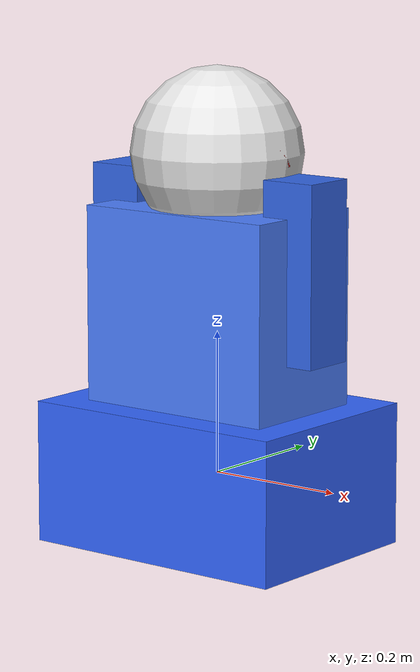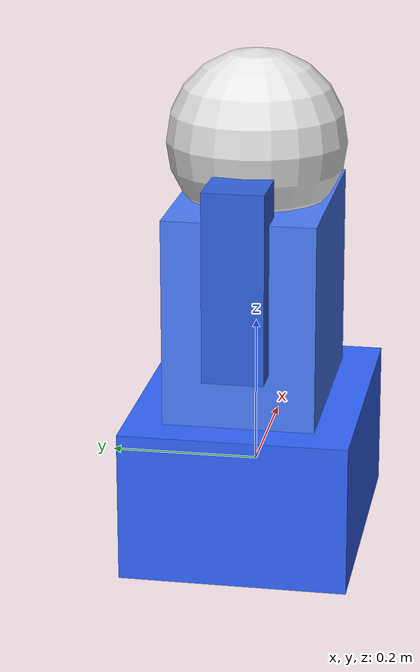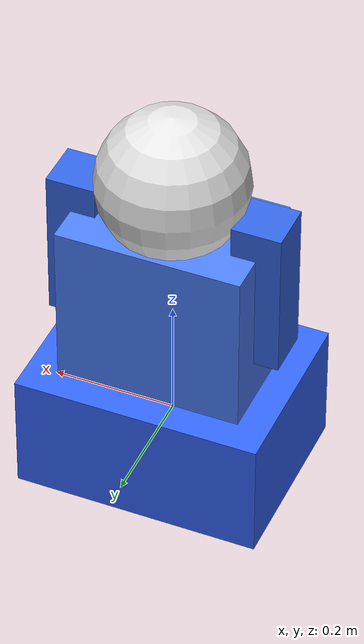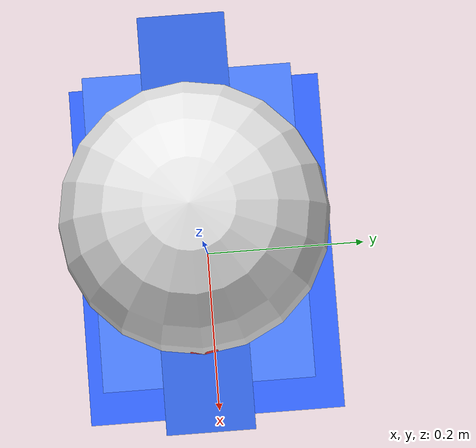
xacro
<?xml version="1.0"?>
<robot name="humanoid_robot" xmlns:xacro="http://ros.org/wiki/xacro">
  <xacro:property name="pi" value="3.14159265359"/>

  <!-- Base link (floating) -->
  <link name="base_link">
    <visual>
      <geometry><box size="0.4 0.3 0.2"/></geometry>
      <material name="blue">
        <color rgba="0.2 0.4 1.0 1.0"/>
      </material>
    </visual>
    <collision>
      <geometry><box size="0.4 0.3 0.2"/></geometry>
    </collision>
    <inertial>
      <mass value="20.0"/>
      <inertia ixx="0.3" ixy="0.0" ixz="0.0" iyy="0.3" iyz="0.0" izz="0.2"/>
    </inertial>
  </link>

  <!-- Torso -->
  <joint name="torso_joint" type="fixed">
    <parent link="base_link"/>
    <child link="torso"/>
    <origin xyz="0 0 0.2"/>
  </joint>
  <link name="torso">
    <visual>
      <geometry><box size="0.3 0.2 0.35"/></geometry>
      <material name="blue_light">
        <color rgba="0.3 0.5 1.0 1.0"/>
      </material>
    </visual>
    <collision>
      <geometry><box size="0.3 0.2 0.35"/></geometry>
    </collision>
    <inertial>
      <mass value="15.0"/>
      <inertia ixx="0.2" ixy="0.0" ixz="0.0" iyy="0.2" iyz="0.0" izz="0.15"/>
    </inertial>
  </link>

  <!-- Head -->
  <joint name="head_joint" type="fixed">
    <parent link="torso"/>
    <child link="head"/>
    <origin xyz="0 0 0.25"/>
  </joint>
  <link name="head">
    <visual>
      <geometry><sphere radius="0.12"/></geometry>
      <material name="white">
        <color rgba="0.9 0.9 0.9 1.0"/>
      </material>
    </visual>
    <collision>
      <geometry><sphere radius="0.12"/></geometry>
    </collision>
    <inertial>
      <mass value="2.0"/>
      <inertia ixx="0.01" ixy="0.0" ixz="0.0" iyy="0.01" iyz="0.0" izz="0.01"/>
    </inertial>
  </link>

  <!-- Left arm -->
  <joint name="left_arm_joint" type="revolute">
    <parent link="torso"/>
    <child link="left_upper_arm"/>
    <origin xyz="-0.15 0 0.1"/>
    <axis xyz="0 1 0"/>
    <limit effort="100" velocity="1.0" lower="-2.0" upper="2.0"/>
  </joint>
  <link name="left_upper_arm">
    <visual>
      <geometry><box size="0.08 0.08 0.25"/></geometry>
      <material name="blue_arm">
        <color rgba="0.2 0.4 0.9 1.0"/>
      </material>
    </visual>
    <inertial>
      <mass value="3.0"/>
      <inertia ixx="0.02" ixy="0.0" ixz="0.0" iyy="0.02" iyz="0.0" izz="0.01"/>
    </inertial>
  </link>

  <!-- Right arm -->
  <joint name="right_arm_joint" type="revolute">
    <parent link="torso"/>
    <child link="right_upper_arm"/>
    <origin xyz="0.15 0 0.1"/>
    <axis xyz="0 1 0"/>
    <limit effort="100" velocity="1.0" lower="-2.0" upper="2.0"/>
  </joint>
  <link name="right_upper_arm">
    <visual>
      <geometry><box size="0.08 0.08 0.25"/></geometry>
      <material name="blue_arm">
        <color rgba="0.2 0.4 0.9 1.0"/>
      </material>
    </visual>
    <inertial>
      <mass value="3.0"/>
      <inertia ixx="0.02" ixy="0.0" ixz="0.0" iyy="0.02" iyz="0.0" izz="0.01"/>
    </inertial>
  </link>

  <!-- Sensor sphere (simulated LIDAR/camera) -->
  <joint name="sensor_joint" type="fixed">
    <parent link="head"/>
    <child link="sensor"/>
    <origin xyz="0.08 0 0"/>
  </joint>
  <link name="sensor">
    <visual>
      <geometry><sphere radius="0.04"/></geometry>
      <material name="red">
        <color rgba="1.0 0.2 0.2 1.0"/>
      </material>
    </visual>
  </link>
</robot>
